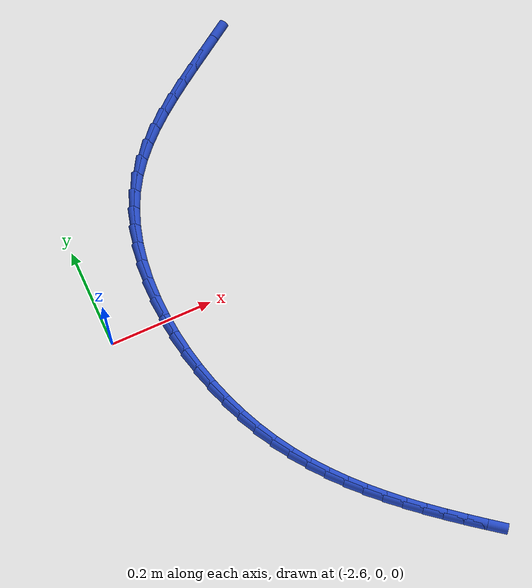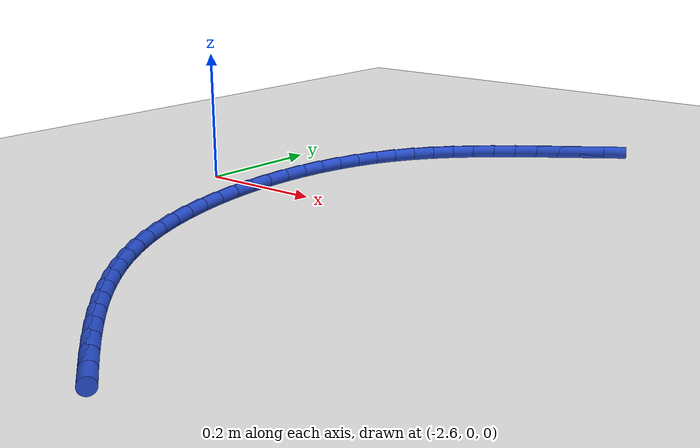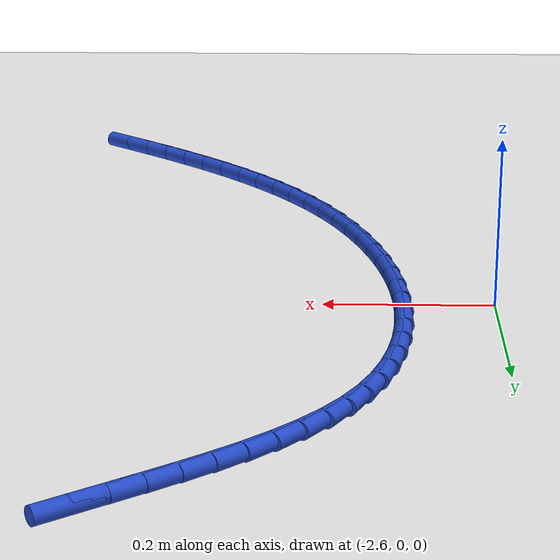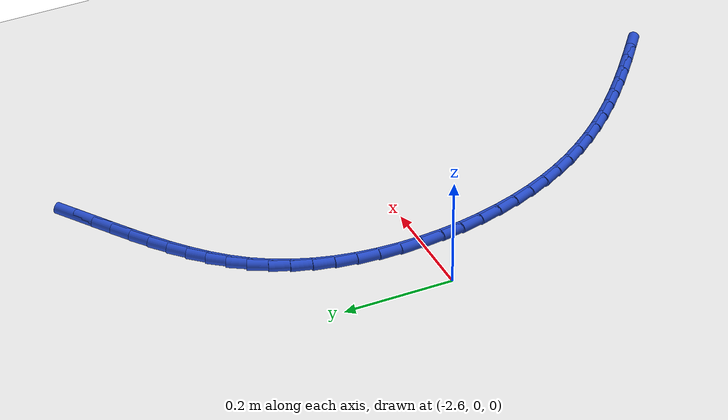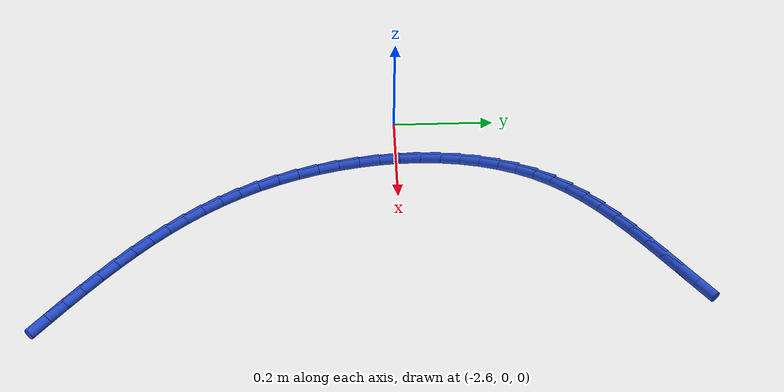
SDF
<sdf version="1.6">
 <world name="default">
  <model name="ground_plane">
   <static>1</static>
   <link name="link">
    <collision name="collision">
     <geometry><plane><normal>0 0 1</normal><size>100 100</size></plane></geometry>
     <surface><friction><ode><mu>100</mu><mu2>50</mu2></ode></friction></surface>
    </collision>
    <visual name="visual">
     <cast_shadows>0</cast_shadows>
     <geometry><plane><normal>0 0 1</normal><size>100 100</size></plane></geometry>
     <material>
      <script><uri>file://media/materials/scripts/gazebo.material</uri><name>Gazebo/WhiteGlow</name></script>
     </material>
    </visual>
   </link>
  </model>
  <model name="line">
   <link name="link_92">
    <pose>-2.169808501718188 0.5051538771038159 0.01 0 1.57 0.5970336419486545</pose>
    <collision name="collision">
     <geometry><cylinder><radius>0.01</radius><length>0.08</length></cylinder></geometry>
    </collision>
    <visual name="visual">
     <material>
      <script><name>Gazebo/Blue</name><uri>file://media/materials/scripts/gazebo.material</uri></script>
     </material>
     <geometry><cylinder><radius>0.01</radius><length>0.08</length></cylinder></geometry>
    </visual>
   </link>
   <link name="link_93">
    <pose>-2.2017131863566375 0.483465363663831 0.01 0 1.57 0.5964261261660093</pose>
    <collision name="collision">
     <geometry><cylinder><radius>0.01</radius><length>0.08</length></cylinder></geometry>
    </collision>
    <visual name="visual">
     <material>
      <script><name>Gazebo/Blue</name><uri>file://media/materials/scripts/gazebo.material</uri></script>
     </material>
     <geometry><cylinder><radius>0.01</radius><length>0.08</length></cylinder></geometry>
    </visual>
   </link>
   <link name="link_94">
    <pose>-2.2334308886761196 0.4619321209839067 0.01 0 1.57 0.6066701374602992</pose>
    <collision name="collision">
     <geometry><cylinder><radius>0.01</radius><length>0.08</length></cylinder></geometry>
    </collision>
    <visual name="visual">
     <material>
      <script><name>Gazebo/Blue</name><uri>file://media/materials/scripts/gazebo.material</uri></script>
     </material>
     <geometry><cylinder><radius>0.01</radius><length>0.08</length></cylinder></geometry>
    </visual>
   </link>
   <link name="link_95">
    <pose>-2.264632327633887 0.4402791369099224 0.01 0 1.57 0.6281651976509609</pose>
    <collision name="collision">
     <geometry><cylinder><radius>0.01</radius><length>0.08</length></cylinder></geometry>
    </collision>
    <visual name="visual">
     <material>
      <script><name>Gazebo/Blue</name><uri>file://media/materials/scripts/gazebo.material</uri></script>
     </material>
     <geometry><cylinder><radius>0.01</radius><length>0.08</length></cylinder></geometry>
    </visual>
   </link>
   <link name="link_96">
    <pose>-2.294988222187185 0.4182313992877587 0.01 0 1.57 0.6614938867395476</pose>
    <collision name="collision">
     <geometry><cylinder><radius>0.01</radius><length>0.08</length></cylinder></geometry>
    </collision>
    <visual name="visual">
     <material>
      <script><name>Gazebo/Blue</name><uri>file://media/materials/scripts/gazebo.material</uri></script>
     </material>
     <geometry><cylinder><radius>0.01</radius><length>0.08</length></cylinder></geometry>
    </visual>
   </link>
   <link name="link_97">
    <pose>-2.3241692912932663 0.39551389596329567 0.01 0 1.57 0.7073579032203863</pose>
    <collision name="collision">
     <geometry><cylinder><radius>0.01</radius><length>0.08</length></cylinder></geometry>
    </collision>
    <visual name="visual">
     <material>
      <script><name>Gazebo/Blue</name><uri>file://media/materials/scripts/gazebo.material</uri></script>
     </material>
     <geometry><cylinder><radius>0.01</radius><length>0.08</length></cylinder></geometry>
    </visual>
   </link>
   <link name="link_98">
    <pose>-2.3518462539093803 0.3718516147824129 0.01 0 1.57 0.7664454474833495</pose>
    <collision name="collision">
     <geometry><cylinder><radius>0.01</radius><length>0.08</length></cylinder></geometry>
    </collision>
    <visual name="visual">
     <material>
      <script><name>Gazebo/Blue</name><uri>file://media/materials/scripts/gazebo.material</uri></script>
     </material>
     <geometry><cylinder><radius>0.01</radius><length>0.08</length></cylinder></geometry>
    </visual>
   </link>
   <link name="link_99">
    <pose>-2.3776898289927746 0.34696954359099097 0.01 0 1.57 0.8392032812745777</pose>
    <collision name="collision">
     <geometry><cylinder><radius>0.01</radius><length>0.08</length></cylinder></geometry>
    </collision>
    <visual name="visual">
     <material>
      <script><name>Gazebo/Blue</name><uri>file://media/materials/scripts/gazebo.material</uri></script>
     </material>
     <geometry><cylinder><radius>0.01</radius><length>0.08</length></cylinder></geometry>
    </visual>
   </link>
   <link name="link_100">
    <pose>-2.4013707355007003 0.32059267023490956 0.01 0 1.57 0.9255026678764233</pose>
    <collision name="collision">
     <geometry><cylinder><radius>0.01</radius><length>0.08</length></cylinder></geometry>
    </collision>
    <visual name="visual">
     <material>
      <script><name>Gazebo/Blue</name><uri>file://media/materials/scripts/gazebo.material</uri></script>
     </material>
     <geometry><cylinder><radius>0.01</radius><length>0.08</length></cylinder></geometry>
    </visual>
   </link>
   <link name="link_101">
    <pose>-2.422559692390407 0.2924459825600493 0.01 0 1.57 1.024060990753878</pose>
    <collision name="collision">
     <geometry><cylinder><radius>0.01</radius><length>0.08</length></cylinder></geometry>
    </collision>
    <visual name="visual">
     <material>
      <script><name>Gazebo/Blue</name><uri>file://media/materials/scripts/gazebo.material</uri></script>
     </material>
     <geometry><cylinder><radius>0.01</radius><length>0.08</length></cylinder></geometry>
    </visual>
   </link>
   <link name="link_102">
    <pose>-2.440931610409073 0.26225990944776684 0.01 0 1.57 1.125631581965042</pose>
    <collision name="collision">
     <geometry><cylinder><radius>0.01</radius><length>0.08</length></cylinder></geometry>
    </collision>
    <visual name="visual">
     <material>
      <script><name>Gazebo/Blue</name><uri>file://media/materials/scripts/gazebo.material</uri></script>
     </material>
     <geometry><cylinder><radius>0.01</radius><length>0.08</length></cylinder></geometry>
    </visual>
   </link>
   <link name="link_103">
    <pose>-2.456330464156404 0.22998432837656504 0.01 0 1.57 1.219860151234651</pose>
    <collision name="collision">
     <geometry><cylinder><radius>0.01</radius><length>0.08</length></cylinder></geometry>
    </collision>
    <visual name="visual">
     <material>
      <script><name>Gazebo/Blue</name><uri>file://media/materials/scripts/gazebo.material</uri></script>
     </material>
     <geometry><cylinder><radius>0.01</radius><length>0.08</length></cylinder></geometry>
    </visual>
   </link>
   <link name="link_104">
    <pose>-2.4688234485611824 0.19585886171918165 0.01 0 1.57 1.3063981277401853</pose>
    <collision name="collision">
     <geometry><cylinder><radius>0.01</radius><length>0.08</length></cylinder></geometry>
    </collision>
    <visual name="visual">
     <material>
      <script><name>Gazebo/Blue</name><uri>file://media/materials/scripts/gazebo.material</uri></script>
     </material>
     <geometry><cylinder><radius>0.01</radius><length>0.08</length></cylinder></geometry>
    </visual>
   </link>
   <link name="link_105">
    <pose>-2.478493044501509 0.16014297334661015 0.01 0 1.57 1.3859072335709466</pose>
    <collision name="collision">
     <geometry><cylinder><radius>0.01</radius><length>0.08</length></cylinder></geometry>
    </collision>
    <visual name="visual">
     <material>
      <script><name>Gazebo/Blue</name><uri>file://media/materials/scripts/gazebo.material</uri></script>
     </material>
     <geometry><cylinder><radius>0.01</radius><length>0.08</length></cylinder></geometry>
    </visual>
   </link>
   <link name="link_106">
    <pose>-2.48542173285549 0.1230961271298426 0.01 0 1.57 1.4592350382400556</pose>
    <collision name="collision">
     <geometry><cylinder><radius>0.01</radius><length>0.08</length></cylinder></geometry>
    </collision>
    <visual name="visual">
     <material>
      <script><name>Gazebo/Blue</name><uri>file://media/materials/scripts/gazebo.material</uri></script>
     </material>
     <geometry><cylinder><radius>0.01</radius><length>0.08</length></cylinder></geometry>
    </visual>
   </link>
   <link name="link_107">
    <pose>-2.4896919945012255 0.08497778693987271 0.01 0 1.57 1.527302076395866</pose>
    <collision name="collision">
     <geometry><cylinder><radius>0.01</radius><length>0.08</length></cylinder></geometry>
    </collision>
    <visual name="visual">
     <material>
      <script><name>Gazebo/Blue</name><uri>file://media/materials/scripts/gazebo.material</uri></script>
     </material>
     <geometry><cylinder><radius>0.01</radius><length>0.08</length></cylinder></geometry>
    </visual>
   </link>
   <link name="link_108">
    <pose>-2.4913863103168206 0.04604741664769245 0.01 0 1.57 -1.5505587228115743</pose>
    <collision name="collision">
     <geometry><cylinder><radius>0.01</radius><length>0.08</length></cylinder></geometry>
    </collision>
    <visual name="visual">
     <material>
      <script><name>Gazebo/Blue</name><uri>file://media/materials/scripts/gazebo.material</uri></script>
     </material>
     <geometry><cylinder><radius>0.01</radius><length>0.08</length></cylinder></geometry>
    </visual>
   </link>
   <link name="link_109">
    <pose>-2.4905871611803785 0.006564480124295597 0.01 0 1.57 -1.4902656641281333</pose>
    <collision name="collision">
     <geometry><cylinder><radius>0.01</radius><length>0.08</length></cylinder></geometry>
    </collision>
    <visual name="visual">
     <material>
      <script><name>Gazebo/Blue</name><uri>file://media/materials/scripts/gazebo.material</uri></script>
     </material>
     <geometry><cylinder><radius>0.01</radius><length>0.08</length></cylinder></geometry>
    </visual>
   </link>
   <link name="link_110">
    <pose>-2.4873770279700014 -0.033211558759325986 0.01 0 1.57 -1.4325558329794874</pose>
    <collision name="collision">
     <geometry><cylinder><radius>0.01</radius><length>0.08</length></cylinder></geometry>
    </collision>
    <visual name="visual">
     <material>
      <script><name>Gazebo/Blue</name><uri>file://media/materials/scripts/gazebo.material</uri></script>
     </material>
     <geometry><cylinder><radius>0.01</radius><length>0.08</length></cylinder></geometry>
    </visual>
   </link>
   <link name="link_111">
    <pose>-2.4818383915637927 -0.07302123613217842 0.01 0 1.57 -1.3766119653759068</pose>
    <collision name="collision">
     <geometry><cylinder><radius>0.01</radius><length>0.08</length></cylinder></geometry>
    </collision>
    <visual name="visual">
     <material>
      <script><name>Gazebo/Blue</name><uri>file://media/materials/scripts/gazebo.material</uri></script>
     </material>
     <geometry><cylinder><radius>0.01</radius><length>0.08</length></cylinder></geometry>
    </visual>
   </link>
   <link name="link_112">
    <pose>-2.474053732839856 -0.11260508812326935 0.01 0 1.57 -1.321644141633021</pose>
    <collision name="collision">
     <geometry><cylinder><radius>0.01</radius><length>0.08</length></cylinder></geometry>
    </collision>
    <visual name="visual">
     <material>
      <script><name>Gazebo/Blue</name><uri>file://media/materials/scripts/gazebo.material</uri></script>
     </material>
     <geometry><cylinder><radius>0.01</radius><length>0.08</length></cylinder></geometry>
    </visual>
   </link>
   <link name="link_113">
    <pose>-2.464105532676294 -0.15170365086160603 0.01 0 1.57 -1.2668738868150362</pose>
    <collision name="collision">
     <geometry><cylinder><radius>0.01</radius><length>0.08</length></cylinder></geometry>
    </collision>
    <visual name="visual">
     <material>
      <script><name>Gazebo/Blue</name><uri>file://media/materials/scripts/gazebo.material</uri></script>
     </material>
     <geometry><cylinder><radius>0.01</radius><length>0.08</length></cylinder></geometry>
    </visual>
   </link>
   <link name="link_114">
    <pose>-2.4520762719512104 -0.19005746047619643 0.01 0 1.57 -1.211515373552063</pose>
    <collision name="collision">
     <geometry><cylinder><radius>0.01</radius><length>0.08</length></cylinder></geometry>
    </collision>
    <visual name="visual">
     <material>
      <script><name>Gazebo/Blue</name><uri>file://media/materials/scripts/gazebo.material</uri></script>
     </material>
     <geometry><cylinder><radius>0.01</radius><length>0.08</length></cylinder></geometry>
    </visual>
   </link>
   <link name="link_115">
    <pose>-2.438048431542708 -0.2274070530960459 0.01 0 1.57 -1.154754972403685</pose>
    <collision name="collision">
     <geometry><cylinder><radius>0.01</radius><length>0.08</length></cylinder></geometry>
    </collision>
    <visual name="visual">
     <material>
      <script><name>Gazebo/Blue</name><uri>file://media/materials/scripts/gazebo.material</uri></script>
     </material>
     <geometry><cylinder><radius>0.01</radius><length>0.08</length></cylinder></geometry>
    </visual>
   </link>
   <link name="link_116">
    <pose>-2.4221044923288897 -0.2634929648501624 0.01 0 1.57 -1.0957522861666018</pose>
    <collision name="collision">
     <geometry><cylinder><radius>0.01</radius><length>0.08</length></cylinder></geometry>
    </collision>
    <visual name="visual">
     <material>
      <script><name>Gazebo/Blue</name><uri>file://media/materials/scripts/gazebo.material</uri></script>
     </material>
     <geometry><cylinder><radius>0.01</radius><length>0.08</length></cylinder></geometry>
    </visual>
   </link>
   <link name="link_117">
    <pose>-2.4043271334229916 -0.29805722291877185 0.01 0 1.57 -1.0357318127037485</pose>
    <collision name="collision">
     <geometry><cylinder><radius>0.01</radius><length>0.08</length></cylinder></geometry>
    </collision>
    <visual name="visual">
     <material>
      <script><name>Gazebo/Blue</name><uri>file://media/materials/scripts/gazebo.material</uri></script>
     </material>
     <geometry><cylinder><radius>0.01</radius><length>0.08</length></cylinder></geometry>
    </visual>
   </link>
   <link name="link_118">
    <pose>-2.3848164972745396 -0.33097320722835344 0.01 0 1.57 -0.9784515739563217</pose>
    <collision name="collision">
     <geometry><cylinder><radius>0.01</radius><length>0.08</length></cylinder></geometry>
    </collision>
    <visual name="visual">
     <material>
      <script><name>Gazebo/Blue</name><uri>file://media/materials/scripts/gazebo.material</uri></script>
     </material>
     <geometry><cylinder><radius>0.01</radius><length>0.08</length></cylinder></geometry>
    </visual>
   </link>
   <link name="link_119">
    <pose>-2.363703601824164 -0.3623465317115075 0.01 0 1.57 -0.9249290741633464</pose>
    <collision name="collision">
     <geometry><cylinder><radius>0.01</radius><length>0.08</length></cylinder></geometry>
    </collision>
    <visual name="visual">
     <material>
      <script><name>Gazebo/Blue</name><uri>file://media/materials/scripts/gazebo.material</uri></script>
     </material>
     <geometry><cylinder><radius>0.01</radius><length>0.08</length></cylinder></geometry>
    </visual>
   </link>
   <link name="link_120">
    <pose>-2.3411226218941996 -0.39230655519554947 0.01 0 1.57 -0.875684527272523</pose>
    <collision name="collision">
     <geometry><cylinder><radius>0.01</radius><length>0.08</length></cylinder></geometry>
    </collision>
    <visual name="visual">
     <material>
      <script><name>Gazebo/Blue</name><uri>file://media/materials/scripts/gazebo.material</uri></script>
     </material>
     <geometry><cylinder><radius>0.01</radius><length>0.08</length></cylinder></geometry>
    </visual>
   </link>
   <link name="link_121">
    <pose>-2.317207732306983 -0.420982636507794 0.01 0 1.57 -0.8310929829611049</pose>
    <collision name="collision">
     <geometry><cylinder><radius>0.01</radius><length>0.08</length></cylinder></geometry>
    </collision>
    <visual name="visual">
     <material>
      <script><name>Gazebo/Blue</name><uri>file://media/materials/scripts/gazebo.material</uri></script>
     </material>
     <geometry><cylinder><radius>0.01</radius><length>0.08</length></cylinder></geometry>
    </visual>
   </link>
   <link name="link_122">
    <pose>-2.2920931078848468 -0.4485041344755563 0.01 0 1.57 -0.7913986659910358</pose>
    <collision name="collision">
     <geometry><cylinder><radius>0.01</radius><length>0.08</length></cylinder></geometry>
    </collision>
    <visual name="visual">
     <material>
      <script><name>Gazebo/Blue</name><uri>file://media/materials/scripts/gazebo.material</uri></script>
     </material>
     <geometry><cylinder><radius>0.01</radius><length>0.08</length></cylinder></geometry>
    </visual>
   </link>
   <link name="link_123">
    <pose>-2.265912923450128 -0.4750004079261496 0.01 0 1.57 -0.7567377307955704</pose>
    <collision name="collision">
     <geometry><cylinder><radius>0.01</radius><length>0.08</length></cylinder></geometry>
    </collision>
    <visual name="visual">
     <material>
      <script><name>Gazebo/Blue</name><uri>file://media/materials/scripts/gazebo.material</uri></script>
     </material>
     <geometry><cylinder><radius>0.01</radius><length>0.08</length></cylinder></geometry>
    </visual>
   </link>
   <link name="link_124">
    <pose>-2.2388013538251608 -0.5006008156868892 0.01 0 1.57 -0.7271644436067672</pose>
    <collision name="collision">
     <geometry><cylinder><radius>0.01</radius><length>0.08</length></cylinder></geometry>
    </collision>
    <visual name="visual">
     <material>
      <script><name>Gazebo/Blue</name><uri>file://media/materials/scripts/gazebo.material</uri></script>
     </material>
     <geometry><cylinder><radius>0.01</radius><length>0.08</length></cylinder></geometry>
    </visual>
   </link>
   <link name="link_125">
    <pose>-2.2108925738322793 -0.5254347165850896 0.01 0 1.57 -0.7026769709834428</pose>
    <collision name="collision">
     <geometry><cylinder><radius>0.01</radius><length>0.08</length></cylinder></geometry>
    </collision>
    <visual name="visual">
     <material>
      <script><name>Gazebo/Blue</name><uri>file://media/materials/scripts/gazebo.material</uri></script>
     </material>
     <geometry><cylinder><radius>0.01</radius><length>0.08</length></cylinder></geometry>
    </visual>
   </link>
   <link name="link_126">
    <pose>-2.1823207582938196 -0.5496314694480658 0.01 0 1.57 -0.6832403618034433</pose>
    <collision name="collision">
     <geometry><cylinder><radius>0.01</radius><length>0.08</length></cylinder></geometry>
    </collision>
    <visual name="visual">
     <material>
      <script><name>Gazebo/Blue</name><uri>file://media/materials/scripts/gazebo.material</uri></script>
     </material>
     <geometry><cylinder><radius>0.01</radius><length>0.08</length></cylinder></geometry>
    </visual>
   </link>
   <link name="link_127">
    <pose>-2.1532200820321163 -0.5733204331031317 0.01 0 1.57 -0.6688055327513539</pose>
    <collision name="collision">
     <geometry><cylinder><radius>0.01</radius><length>0.08</length></cylinder></geometry>
    </collision>
    <visual name="visual">
     <material>
      <script><name>Gazebo/Blue</name><uri>file://media/materials/scripts/gazebo.material</uri></script>
     </material>
     <geometry><cylinder><radius>0.01</radius><length>0.08</length></cylinder></geometry>
    </visual>
   </link>
   <link name="link_128">
    <pose>-2.123724719869504 -0.596630966377602 0.01 0 1.57 -0.659323924725305</pose>
    <collision name="collision">
     <geometry><cylinder><radius>0.01</radius><length>0.08</length></cylinder></geometry>
    </collision>
    <visual name="visual">
     <material>
      <script><name>Gazebo/Blue</name><uri>file://media/materials/scripts/gazebo.material</uri></script>
     </material>
     <geometry><cylinder><radius>0.01</radius><length>0.08</length></cylinder></geometry>
    </visual>
   </link>
  </model>
 </world>
</sdf>
